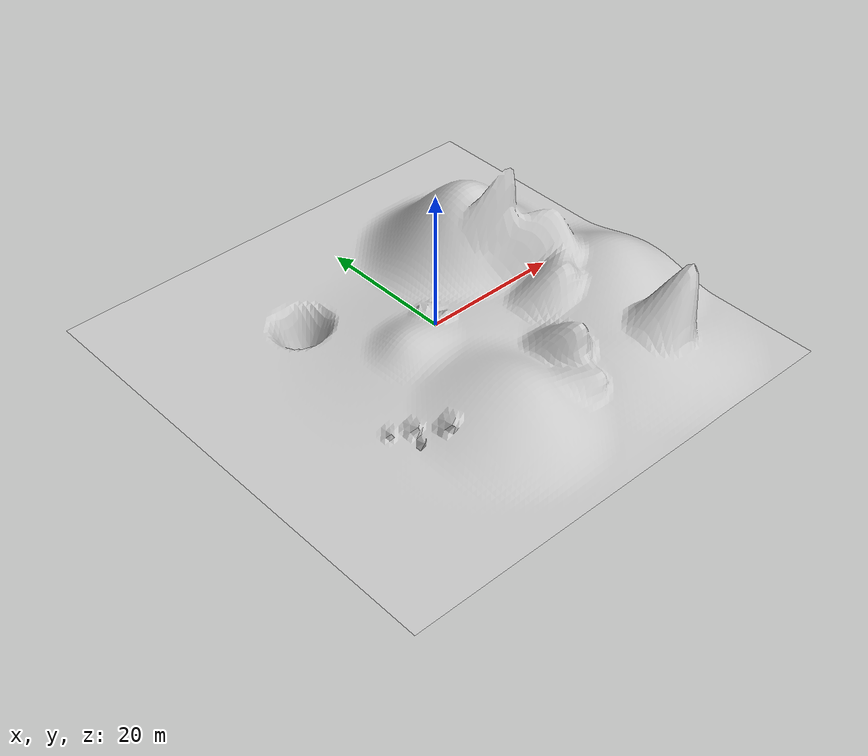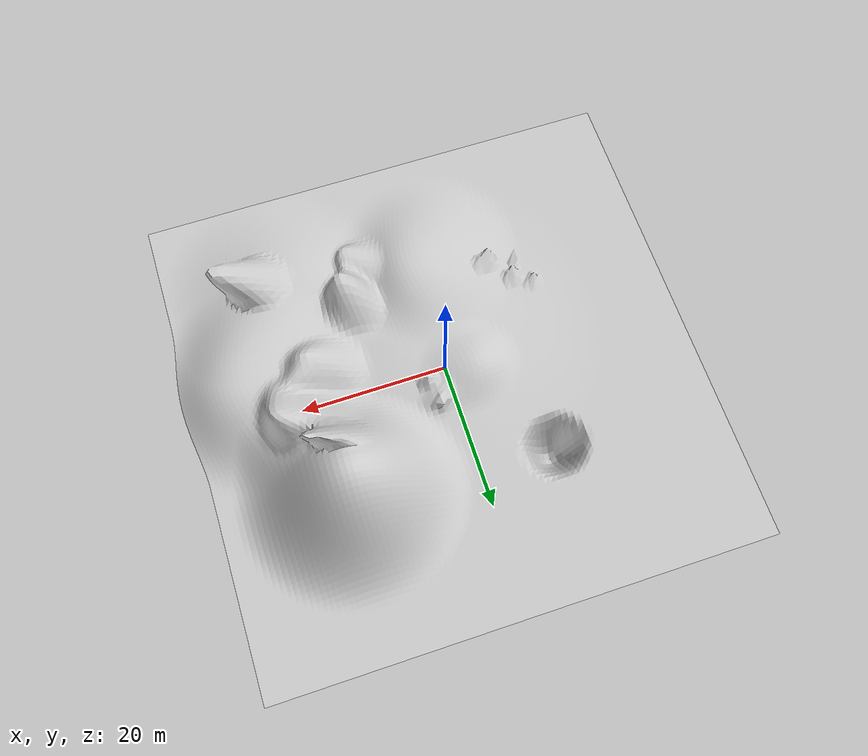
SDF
<?xml version="1.0"?>
<sdf version='1.9'>
  <world name='lunar_terrain'>
    <physics name='1ms' type='ignored'>
      <max_step_size>0.001</max_step_size>
      <real_time_factor>1</real_time_factor>
      <real_time_update_rate>1000</real_time_update_rate>
    </physics>
    <plugin name='gz::sim::systems::Physics' filename='gz-sim-physics-system'/>
    <plugin name='gz::sim::systems::UserCommands' filename='gz-sim-user-commands-system'/>
    <plugin name='gz::sim::systems::SceneBroadcaster' filename='gz-sim-scene-broadcaster-system'/>
    <plugin name='gz::sim::systems::Sensors' filename='gz-sim-sensors-system'>
      <render_engine>ogre2</render_engine>
    </plugin>
    <plugin name='gz::sim::systems::Imu' filename='gz-sim-imu-system'/>
    <plugin name='gz::sim::systems::Contact' filename='gz-sim-contact-system'/>
    <gravity>0 0 -1.633333333</gravity>
    <magnetic_field>5.5644999999999998e-06 2.2875799999999999e-05 -4.2388400000000002e-05</magnetic_field>
    <atmosphere type='adiabatic'/>
    <scene>
      <ambient>0.400000006 0.400000006 0.400000006 1</ambient>
      <background>0.699999988 0.699999988 0.699999988 1</background>
      <shadows>true</shadows>
      <grid>false</grid>
    </scene>
    <model name='ground_plane'>
      <static>true</static>
      <link name='link'>
        <collision name='collision'>
          <geometry>
            <mesh>
              <uri>model://TerrainTest.obj</uri>
            </mesh>
          </geometry>
          <surface>
            <friction>
              <ode/>
            </friction>
            <bounce/>
            <contact/>
          </surface>
        </collision>
        <visual name='visual'>
          <geometry>
            <mesh>
              <uri>model://TerrainTest.obj</uri>
            </mesh>
          </geometry>
          <material>
            <ambient>0.800000012 0.800000012 0.800000012 1</ambient>
            <diffuse>0.800000012 0.800000012 0.800000012 1</diffuse>
            <specular>0.800000012 0.800000012 0.800000012 1</specular>
          </material>
        </visual>
        <pose>0 0 0 0 0 0</pose>
        <inertial>
          <pose>0 0 0 0 0 0</pose>
          <mass>1</mass>
          <inertia>
            <ixx>1</ixx>
            <ixy>0</ixy>
            <ixz>0</ixz>
            <iyy>1</iyy>
            <iyz>0</iyz>
            <izz>1</izz>
          </inertia>
        </inertial>
        <enable_wind>false</enable_wind>
      </link>
      <pose>0 0 -2.7 1.5700000000000001 0 0</pose>
      <self_collide>false</self_collide>
    </model>
    <light name='sun' type='directional'>
      <pose>0 0 10 0 0 0</pose>
      <cast_shadows>true</cast_shadows>
      <intensity>1</intensity>
      <direction>-0.5 0.10000000000000001 -0.90000000000000002</direction>
      <diffuse>0.800000012 0.800000012 0.800000012 1</diffuse>
      <specular>0.200000003 0.200000003 0.200000003 1</specular>
      <attenuation>
        <range>1000</range>
        <linear>0.0099999997764825821</linear>
        <constant>0.89999997615814209</constant>
        <quadratic>0.0010000000474974513</quadratic>
      </attenuation>
      <spot>
        <inner_angle>0</inner_angle>
        <outer_angle>0</outer_angle>
        <falloff>0</falloff>
      </spot>
    </light>
  </world>
</sdf>
